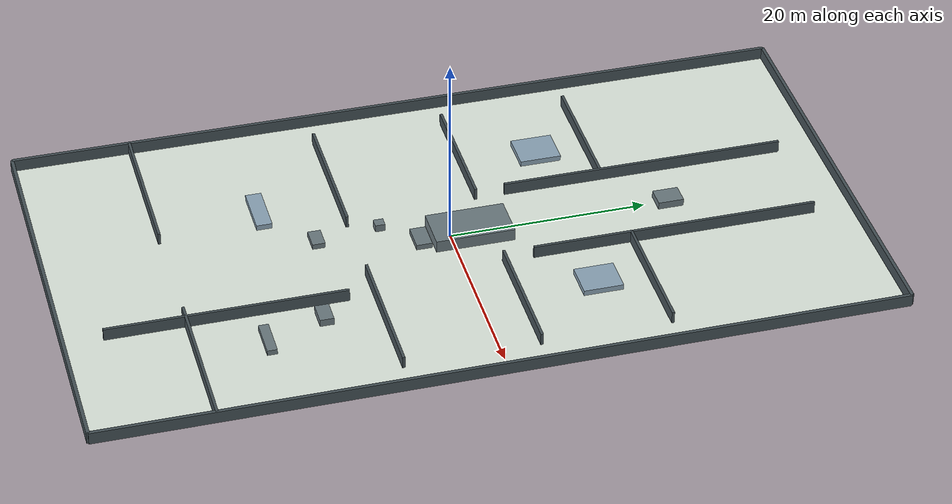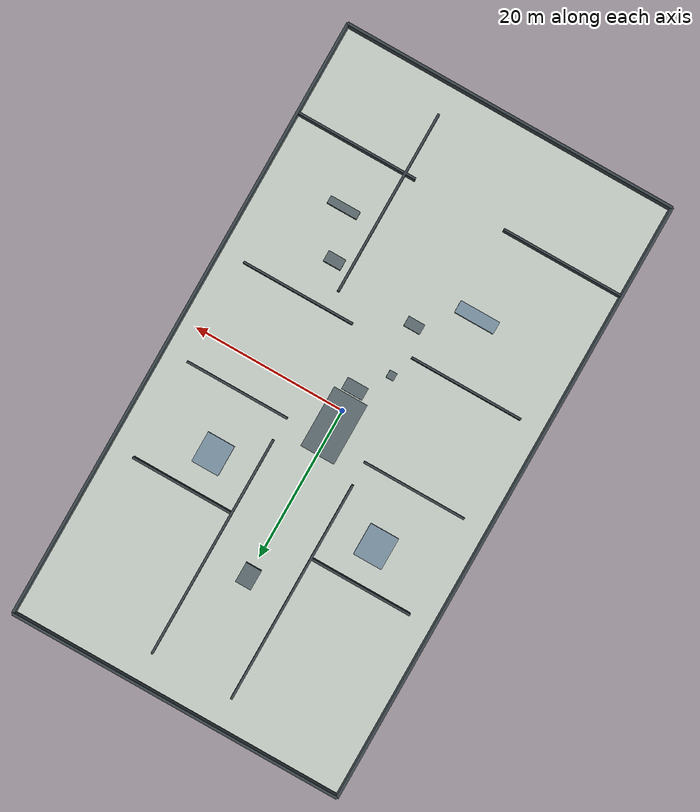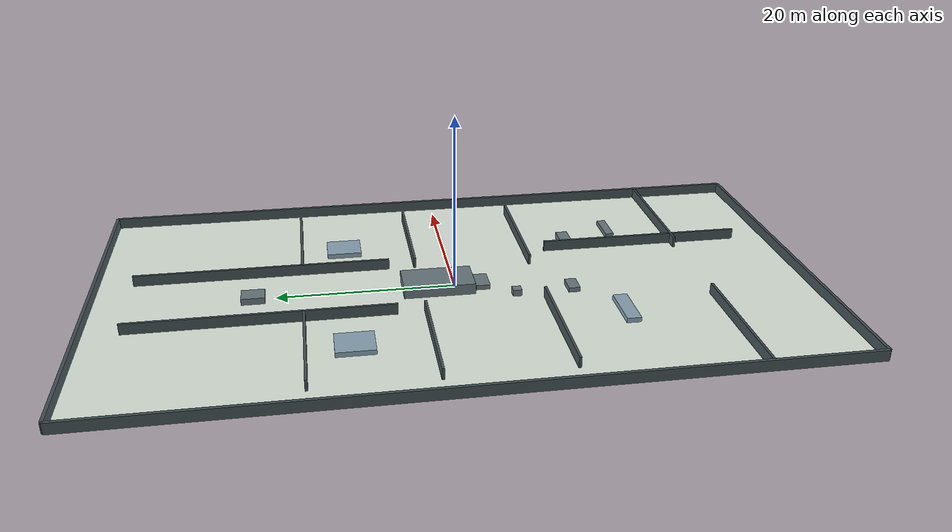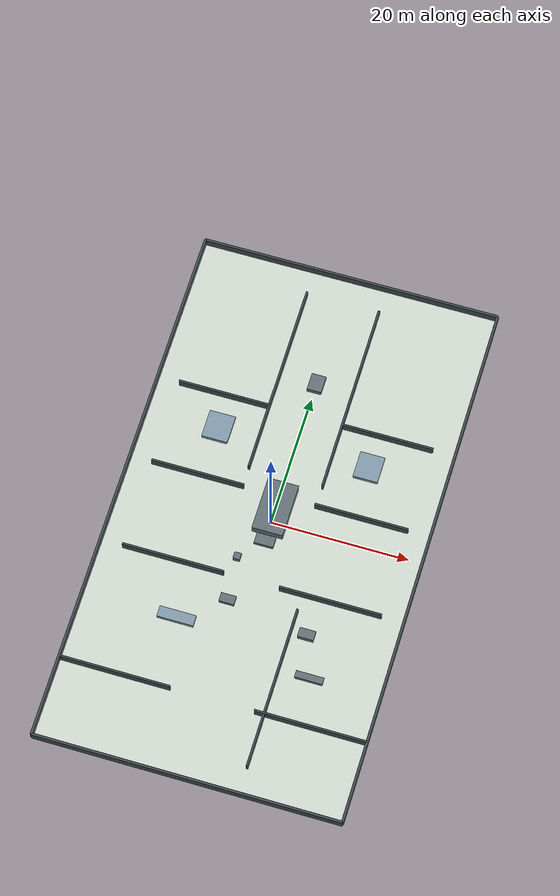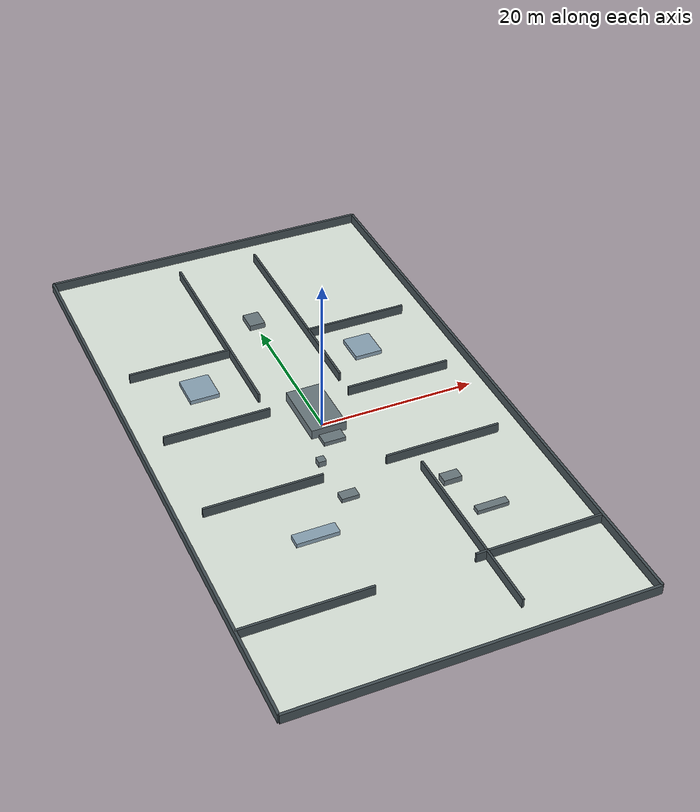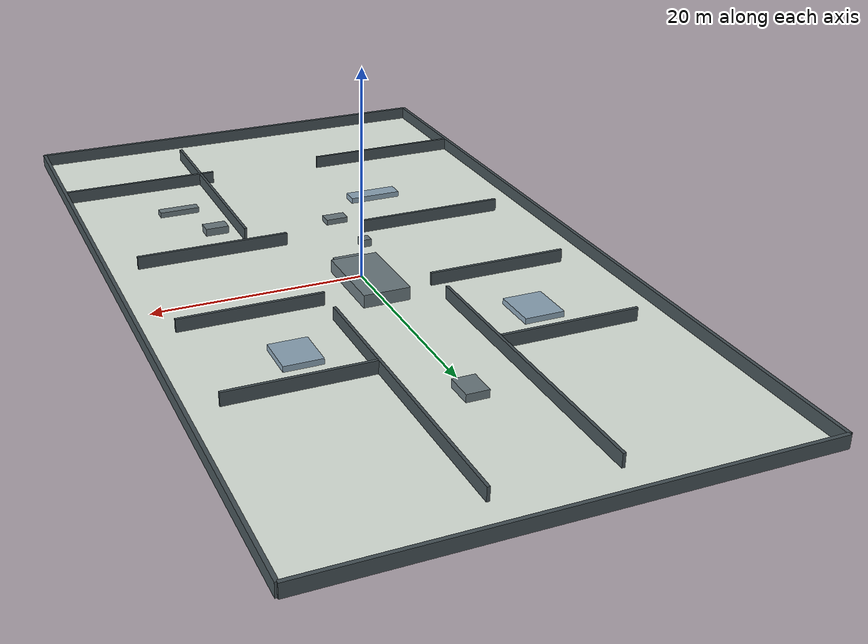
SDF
<?xml version="1.0" ?>
<sdf version="1.6">
  <world name="suburban_villa">
    <gravity>0 0 -9.8</gravity>
    <scene>
      <ambient>0.65 0.65 0.65 1</ambient>
      <background>0.78 0.84 0.88 1</background>
    </scene>
    <include>
      <uri>model://sun</uri>
    </include>
    <model name="suburban_villa_floor">
      <static>true</static>
      <pose>0.000 0.000 -0.025 0 0 0</pose>
      <link name="floor_link">
        <collision name="floor_collision">
          <geometry>
            <box><size>44.000 80.000 0.050</size></box>
          </geometry>
        </collision>
        <visual name="floor_visual">
          <geometry>
            <box><size>44.000 80.000 0.050</size></box>
          </geometry>
          <material><ambient>0.88 0.92 0.88 1</ambient><diffuse>0.88 0.92 0.88 1</diffuse></material>
        </visual>
      </link>
    </model>
    <model name="outer_north">
      <static>true</static>
      <pose>0.000 40.000 0.625 0 0 0</pose>
      <link name="outer_north_link">
        <collision name="outer_north_collision">
          <geometry>
            <box><size>44.000 0.350 1.250</size></box>
          </geometry>
        </collision>
        <visual name="outer_north_visual">
          <geometry>
            <box><size>44.000 0.350 1.250</size></box>
          </geometry>
          <material><ambient>0.27 0.32 0.34 1</ambient><diffuse>0.27 0.32 0.34 1</diffuse></material>
        </visual>
      </link>
    </model>
    <model name="outer_south">
      <static>true</static>
      <pose>0.000 -40.000 0.625 0 0 0</pose>
      <link name="outer_south_link">
        <collision name="outer_south_collision">
          <geometry>
            <box><size>44.000 0.350 1.250</size></box>
          </geometry>
        </collision>
        <visual name="outer_south_visual">
          <geometry>
            <box><size>44.000 0.350 1.250</size></box>
          </geometry>
          <material><ambient>0.27 0.32 0.34 1</ambient><diffuse>0.27 0.32 0.34 1</diffuse></material>
        </visual>
      </link>
    </model>
    <model name="outer_west">
      <static>true</static>
      <pose>-22.000 0.000 0.625 0 0 0</pose>
      <link name="outer_west_link">
        <collision name="outer_west_collision">
          <geometry>
            <box><size>0.350 80.000 1.250</size></box>
          </geometry>
        </collision>
        <visual name="outer_west_visual">
          <geometry>
            <box><size>0.350 80.000 1.250</size></box>
          </geometry>
          <material><ambient>0.27 0.32 0.34 1</ambient><diffuse>0.27 0.32 0.34 1</diffuse></material>
        </visual>
      </link>
    </model>
    <model name="outer_east">
      <static>true</static>
      <pose>22.000 0.000 0.625 0 0 0</pose>
      <link name="outer_east_link">
        <collision name="outer_east_collision">
          <geometry>
            <box><size>0.350 80.000 1.250</size></box>
          </geometry>
        </collision>
        <visual name="outer_east_visual">
          <geometry>
            <box><size>0.350 80.000 1.250</size></box>
          </geometry>
          <material><ambient>0.27 0.32 0.34 1</ambient><diffuse>0.27 0.32 0.34 1</diffuse></material>
        </visual>
      </link>
    </model>
    <model name="home_public_private_wall_w">
      <static>true</static>
      <pose>-12.000 4.000 0.625 0 0 0</pose>
      <link name="home_public_private_wall_w_link">
        <collision name="home_public_private_wall_w_collision">
          <geometry>
            <box><size>13.600 0.280 1.250</size></box>
          </geometry>
        </collision>
        <visual name="home_public_private_wall_w_visual">
          <geometry>
            <box><size>13.600 0.280 1.250</size></box>
          </geometry>
          <material><ambient>0.27 0.32 0.34 1</ambient><diffuse>0.27 0.32 0.34 1</diffuse></material>
        </visual>
      </link>
    </model>
    <model name="home_public_private_wall_e">
      <static>true</static>
      <pose>12.000 4.000 0.625 0 0 0</pose>
      <link name="home_public_private_wall_e_link">
        <collision name="home_public_private_wall_e_collision">
          <geometry>
            <box><size>13.600 0.280 1.250</size></box>
          </geometry>
        </collision>
        <visual name="home_public_private_wall_e_visual">
          <geometry>
            <box><size>13.600 0.280 1.250</size></box>
          </geometry>
          <material><ambient>0.27 0.32 0.34 1</ambient><diffuse>0.27 0.32 0.34 1</diffuse></material>
        </visual>
      </link>
    </model>
    <model name="home_left_private_wall">
      <static>true</static>
      <pose>-5.400 21.500 0.625 0 0 0</pose>
      <link name="home_left_private_wall_link">
        <collision name="home_left_private_wall_collision">
          <geometry>
            <box><size>0.280 29.000 1.250</size></box>
          </geometry>
        </collision>
        <visual name="home_left_private_wall_visual">
          <geometry>
            <box><size>0.280 29.000 1.250</size></box>
          </geometry>
          <material><ambient>0.27 0.32 0.34 1</ambient><diffuse>0.27 0.32 0.34 1</diffuse></material>
        </visual>
      </link>
    </model>
    <model name="home_right_private_wall">
      <static>true</static>
      <pose>5.400 21.500 0.625 0 0 0</pose>
      <link name="home_right_private_wall_link">
        <collision name="home_right_private_wall_collision">
          <geometry>
            <box><size>0.280 29.000 1.250</size></box>
          </geometry>
        </collision>
        <visual name="home_right_private_wall_visual">
          <geometry>
            <box><size>0.280 29.000 1.250</size></box>
          </geometry>
          <material><ambient>0.27 0.32 0.34 1</ambient><diffuse>0.27 0.32 0.34 1</diffuse></material>
        </visual>
      </link>
    </model>
    <model name="home_kitchen_side_wall">
      <static>true</static>
      <pose>7.400 -24.000 0.625 0 0 0</pose>
      <link name="home_kitchen_side_wall_link">
        <collision name="home_kitchen_side_wall_collision">
          <geometry>
            <box><size>0.280 24.000 1.250</size></box>
          </geometry>
        </collision>
        <visual name="home_kitchen_side_wall_visual">
          <geometry>
            <box><size>0.280 24.000 1.250</size></box>
          </geometry>
          <material><ambient>0.27 0.32 0.34 1</ambient><diffuse>0.27 0.32 0.34 1</diffuse></material>
        </visual>
      </link>
    </model>
    <model name="home_kitchen_dining_wall_w">
      <static>true</static>
      <pose>-11.400 -9.500 0.625 0 0 0</pose>
      <link name="home_kitchen_dining_wall_w_link">
        <collision name="home_kitchen_dining_wall_w_collision">
          <geometry>
            <box><size>14.800 0.280 1.250</size></box>
          </geometry>
        </collision>
        <visual name="home_kitchen_dining_wall_w_visual">
          <geometry>
            <box><size>14.800 0.280 1.250</size></box>
          </geometry>
          <material><ambient>0.27 0.32 0.34 1</ambient><diffuse>0.27 0.32 0.34 1</diffuse></material>
        </visual>
      </link>
    </model>
    <model name="home_kitchen_dining_wall_e">
      <static>true</static>
      <pose>11.400 -9.500 0.625 0 0 0</pose>
      <link name="home_kitchen_dining_wall_e_link">
        <collision name="home_kitchen_dining_wall_e_collision">
          <geometry>
            <box><size>14.800 0.280 1.250</size></box>
          </geometry>
        </collision>
        <visual name="home_kitchen_dining_wall_e_visual">
          <geometry>
            <box><size>14.800 0.280 1.250</size></box>
          </geometry>
          <material><ambient>0.27 0.32 0.34 1</ambient><diffuse>0.27 0.32 0.34 1</diffuse></material>
        </visual>
      </link>
    </model>
    <model name="home_bath_wall_w">
      <static>true</static>
      <pose>-12.100 17.000 0.625 0 0 0</pose>
      <link name="home_bath_wall_w_link">
        <collision name="home_bath_wall_w_collision">
          <geometry>
            <box><size>13.400 0.280 1.250</size></box>
          </geometry>
        </collision>
        <visual name="home_bath_wall_w_visual">
          <geometry>
            <box><size>13.400 0.280 1.250</size></box>
          </geometry>
          <material><ambient>0.27 0.32 0.34 1</ambient><diffuse>0.27 0.32 0.34 1</diffuse></material>
        </visual>
      </link>
    </model>
    <model name="home_bath_wall_e">
      <static>true</static>
      <pose>12.100 17.000 0.625 0 0 0</pose>
      <link name="home_bath_wall_e_link">
        <collision name="home_bath_wall_e_collision">
          <geometry>
            <box><size>13.400 0.280 1.250</size></box>
          </geometry>
        </collision>
        <visual name="home_bath_wall_e_visual">
          <geometry>
            <box><size>13.400 0.280 1.250</size></box>
          </geometry>
          <material><ambient>0.27 0.32 0.34 1</ambient><diffuse>0.27 0.32 0.34 1</diffuse></material>
        </visual>
      </link>
    </model>
    <model name="villa_sofa">
      <static>true</static>
      <pose>-8.400 -17.500 0.275 0 0 0</pose>
      <link name="villa_sofa_link">
        <collision name="villa_sofa_collision">
          <geometry>
            <box><size>5.280 1.600 0.550</size></box>
          </geometry>
        </collision>
        <visual name="villa_sofa_visual">
          <geometry>
            <box><size>5.280 1.600 0.550</size></box>
          </geometry>
          <material><ambient>0.55 0.65 0.72 1</ambient><diffuse>0.55 0.65 0.72 1</diffuse></material>
        </visual>
      </link>
    </model>
    <model name="villa_coffee_table">
      <static>true</static>
      <pose>-2.400 -13.000 0.275 0 0 0</pose>
      <link name="villa_coffee_table_link">
        <collision name="villa_coffee_table_collision">
          <geometry>
            <box><size>2.200 1.300 0.550</size></box>
          </geometry>
        </collision>
        <visual name="villa_coffee_table_visual">
          <geometry>
            <box><size>2.200 1.300 0.550</size></box>
          </geometry>
          <material><ambient>0.42 0.48 0.50 1</ambient><diffuse>0.42 0.48 0.50 1</diffuse></material>
        </visual>
      </link>
    </model>
    <model name="villa_dining_table">
      <static>true</static>
      <pose>0.000 -3.000 0.275 0 0 0</pose>
      <link name="villa_dining_table_link">
        <collision name="villa_dining_table_collision">
          <geometry>
            <box><size>2.800 1.600 0.550</size></box>
          </geometry>
        </collision>
        <visual name="villa_dining_table_visual">
          <geometry>
            <box><size>2.800 1.600 0.550</size></box>
          </geometry>
          <material><ambient>0.42 0.48 0.50 1</ambient><diffuse>0.42 0.48 0.50 1</diffuse></material>
        </visual>
      </link>
    </model>
    <model name="villa_kitchen_counter">
      <static>true</static>
      <pose>11.760 -21.000 0.275 0 0 0</pose>
      <link name="villa_kitchen_counter_link">
        <collision name="villa_kitchen_counter_collision">
          <geometry>
            <box><size>4.000 1.000 0.550</size></box>
          </geometry>
        </collision>
        <visual name="villa_kitchen_counter_visual">
          <geometry>
            <box><size>4.000 1.000 0.550</size></box>
          </geometry>
          <material><ambient>0.42 0.48 0.50 1</ambient><diffuse>0.42 0.48 0.50 1</diffuse></material>
        </visual>
      </link>
    </model>
    <model name="villa_kitchen_island">
      <static>true</static>
      <pose>9.600 -15.000 0.375 0 0 0</pose>
      <link name="villa_kitchen_island_link">
        <collision name="villa_kitchen_island_collision">
          <geometry>
            <box><size>2.300 1.400 0.750</size></box>
          </geometry>
        </collision>
        <visual name="villa_kitchen_island_visual">
          <geometry>
            <box><size>2.300 1.400 0.750</size></box>
          </geometry>
          <material><ambient>0.42 0.48 0.50 1</ambient><diffuse>0.42 0.48 0.50 1</diffuse></material>
        </visual>
      </link>
    </model>
    <model name="villa_bed_left">
      <static>true</static>
      <pose>-11.400 12.000 0.275 0 0 0</pose>
      <link name="villa_bed_left_link">
        <collision name="villa_bed_left_collision">
          <geometry>
            <box><size>3.800 4.200 0.550</size></box>
          </geometry>
        </collision>
        <visual name="villa_bed_left_visual">
          <geometry>
            <box><size>3.800 4.200 0.550</size></box>
          </geometry>
          <material><ambient>0.55 0.65 0.72 1</ambient><diffuse>0.55 0.65 0.72 1</diffuse></material>
        </visual>
      </link>
    </model>
    <model name="villa_bed_right">
      <static>true</static>
      <pose>10.800 12.000 0.275 0 0 0</pose>
      <link name="villa_bed_right_link">
        <collision name="villa_bed_right_collision">
          <geometry>
            <box><size>3.600 4.000 0.550</size></box>
          </geometry>
        </collision>
        <visual name="villa_bed_right_visual">
          <geometry>
            <box><size>3.600 4.000 0.550</size></box>
          </geometry>
          <material><ambient>0.55 0.65 0.72 1</ambient><diffuse>0.55 0.65 0.72 1</diffuse></material>
        </visual>
      </link>
    </model>
    <model name="villa_bath_fixture">
      <static>true</static>
      <pose>0.000 22.500 0.375 0 0 0</pose>
      <link name="villa_bath_fixture_link">
        <collision name="villa_bath_fixture_collision">
          <geometry>
            <box><size>2.100 2.600 0.750</size></box>
          </geometry>
        </collision>
        <visual name="villa_bath_fixture_visual">
          <geometry>
            <box><size>2.100 2.600 0.750</size></box>
          </geometry>
          <material><ambient>0.42 0.48 0.50 1</ambient><diffuse>0.42 0.48 0.50 1</diffuse></material>
        </visual>
      </link>
    </model>
    <model name="villa_fragile_object">
      <static>true</static>
      <pose>-3.000 -6.500 0.375 0 0 0</pose>
      <link name="villa_fragile_object_link">
        <collision name="villa_fragile_object_collision">
          <geometry>
            <box><size>1.000 1.000 0.750</size></box>
          </geometry>
        </collision>
        <visual name="villa_fragile_object_visual">
          <geometry>
            <box><size>1.000 1.000 0.750</size></box>
          </geometry>
          <material><ambient>0.42 0.48 0.50 1</ambient><diffuse>0.42 0.48 0.50 1</diffuse></material>
        </visual>
      </link>
    </model>
    <model name="villa_grand_stair_low_core">
      <static>true</static>
      <pose>0.000 2.000 0.625 0 0 0</pose>
      <link name="villa_grand_stair_low_core_link">
        <collision name="villa_grand_stair_low_core_collision">
          <geometry>
            <box><size>4.500 8.000 1.250</size></box>
          </geometry>
        </collision>
        <visual name="villa_grand_stair_low_core_visual">
          <geometry>
            <box><size>4.500 8.000 1.250</size></box>
          </geometry>
          <material><ambient>0.42 0.48 0.50 1</ambient><diffuse>0.42 0.48 0.50 1</diffuse></material>
        </visual>
      </link>
    </model>
    <model name="villa_foyer_partition_w">
      <static>true</static>
      <pose>-14.000 -28.000 0.625 0 0 0</pose>
      <link name="villa_foyer_partition_w_link">
        <collision name="villa_foyer_partition_w_collision">
          <geometry>
            <box><size>16.000 0.280 1.250</size></box>
          </geometry>
        </collision>
        <visual name="villa_foyer_partition_w_visual">
          <geometry>
            <box><size>16.000 0.280 1.250</size></box>
          </geometry>
          <material><ambient>0.27 0.32 0.34 1</ambient><diffuse>0.27 0.32 0.34 1</diffuse></material>
        </visual>
      </link>
    </model>
    <model name="villa_foyer_partition_e">
      <static>true</static>
      <pose>14.000 -28.000 0.625 0 0 0</pose>
      <link name="villa_foyer_partition_e_link">
        <collision name="villa_foyer_partition_e_collision">
          <geometry>
            <box><size>16.000 0.280 1.250</size></box>
          </geometry>
        </collision>
        <visual name="villa_foyer_partition_e_visual">
          <geometry>
            <box><size>16.000 0.280 1.250</size></box>
          </geometry>
          <material><ambient>0.27 0.32 0.34 1</ambient><diffuse>0.27 0.32 0.34 1</diffuse></material>
        </visual>
      </link>
    </model>
  </world>
</sdf>
